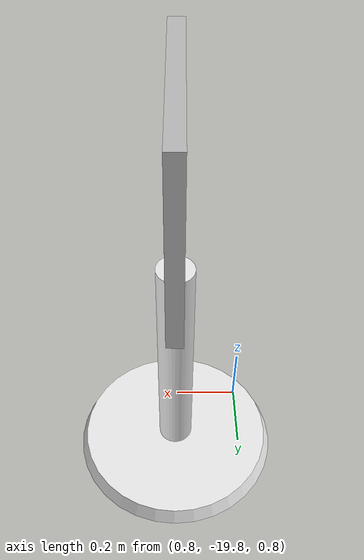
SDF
<sdf version="1.7">
 <world name="default">
  <model name="sign_board_trafik_isik">
   <link name="link_0">
    <inertial>
     <mass>1</mass>
     <inertia>
      <ixx>0.166667</ixx>
      <ixy>0</ixy>
      <ixz>0</ixz>
      <iyy>0.166667</iyy>
      <iyz>0</iyz>
      <izz>0.166667</izz>
     </inertia>
    </inertial>
    <visual name="visual">
     <geometry>
      <mesh>
       <uri>/home/davut/otonomus_ws/src/self_driving_car_pkg/models/sign_board_trafik_isik/meshes/sign_stand.obj</uri>
       <scale>0.25 0.25 0.25</scale>
      </mesh>
     </geometry>
     <material>
      <lighting>1</lighting>
      <script><uri>file://media/materials/scripts/gazebo.material</uri><name>Gazebo/White</name></script>
      <shader type="pixel"/>
      <emissive>0 0 0 1</emissive>
     </material>
    </visual>
    <collision name="collision">
     <geometry>
      <mesh>
       <uri>/home/davut/otonomus_ws/src/self_driving_car_pkg/models/sign_board_trafik_isik/meshes/sign_stand.obj</uri>
       <scale>0.25 0.25 0.25</scale>
      </mesh>
     </geometry>
     <surface>
      <friction>
       <ode><mu>1</mu><mu2>1</mu2><fdir1>0 0 0</fdir1><slip1>0</slip1><slip2>0</slip2></ode>
       <torsional>
        <coefficient>1</coefficient>
        <patch_radius>0</patch_radius>
        <surface_radius>0</surface_radius>
        <use_patch_radius>1</use_patch_radius>
        <ode><slip>0</slip></ode>
       </torsional>
      </friction>
      <bounce><restitution_coefficient>0</restitution_coefficient><threshold>1e+06</threshold></bounce>
      <contact>
       <collide_without_contact>0</collide_without_contact>
       <collide_without_contact_bitmask>1</collide_without_contact_bitmask>
       <collide_bitmask>1</collide_bitmask>
       <ode>
        <soft_cfm>0</soft_cfm>
        <soft_erp>0.2</soft_erp>
        <kp>1e+13</kp>
        <kd>1</kd>
        <max_vel>0.01</max_vel>
        <min_depth>0</min_depth>
       </ode>
       <bullet>
        <split_impulse>1</split_impulse>
        <split_impulse_penetration_threshold>-0.01</split_impulse_penetration_threshold>
        <soft_cfm>0</soft_cfm>
        <soft_erp>0.2</soft_erp>
        <kp>1e+13</kp>
        <kd>1</kd>
       </bullet>
      </contact>
     </surface>
    </collision>
   </link>
   <link name="link_1">
    <inertial>
     <mass>1</mass>
     <inertia>
      <ixx>0.166667</ixx>
      <ixy>0</ixy>
      <ixz>0</ixz>
      <iyy>0.166667</iyy>
      <iyz>0</iyz>
      <izz>0.166667</izz>
     </inertia>
    </inertial>
    <visual name="visual">
     <geometry>
      <mesh>
       <uri>/home/davut/otonomus_ws/src/self_driving_car_pkg/models/sign_board_trafik_isik/meshes/sign_board.obj</uri>
       <scale>0.25 0.25 0.25</scale>
      </mesh>
     </geometry>
     <material>
      <script>
       <uri>/home/davut/otonomus_ws/src/self_driving_car_pkg/models/sign_board_trafik_isik/materials/scripts</uri>
       <uri>/home/davut/otonomus_ws/src/self_driving_car_pkg/models/sign_board_trafik_isik/materials/textures</uri>
       <name>sign_board_trafik_isik/Diffuse</name>
      </script>
     </material>
    </visual>
    <collision name="collision">
     <geometry>
      <mesh>
       <uri>/home/davut/otonomus_ws/src/self_driving_car_pkg/models/sign_board_trafik_isik/meshes/sign_board.obj</uri>
       <scale>0.25 0.25 0.25</scale>
      </mesh>
     </geometry>
     <surface>
      <friction>
       <ode><mu>1</mu><mu2>1</mu2><fdir1>0 0 0</fdir1><slip1>0</slip1><slip2>0</slip2></ode>
       <torsional>
        <coefficient>1</coefficient>
        <patch_radius>0</patch_radius>
        <surface_radius>0</surface_radius>
        <use_patch_radius>1</use_patch_radius>
        <ode><slip>0</slip></ode>
       </torsional>
      </friction>
      <bounce><restitution_coefficient>0</restitution_coefficient><threshold>1e+06</threshold></bounce>
      <contact>
       <collide_without_contact>0</collide_without_contact>
       <collide_without_contact_bitmask>1</collide_without_contact_bitmask>
       <collide_bitmask>1</collide_bitmask>
       <ode>
        <soft_cfm>0</soft_cfm>
        <soft_erp>0.2</soft_erp>
        <kp>1e+13</kp>
        <kd>1</kd>
        <max_vel>0.01</max_vel>
        <min_depth>0</min_depth>
       </ode>
       <bullet>
        <split_impulse>1</split_impulse>
        <split_impulse_penetration_threshold>-0.01</split_impulse_penetration_threshold>
        <soft_cfm>0</soft_cfm>
        <soft_erp>0.2</soft_erp>
        <kp>1e+13</kp>
        <kd>1</kd>
       </bullet>
      </contact>
     </surface>
    </collision>
   </link>
   <joint name="link_0_JOINT_0" type="fixed">
    <parent>link_0</parent>
    <child>link_1</child>
    <physics>
     <ode><limit><cfm>0</cfm><erp>0.2</erp></limit><suspension><cfm>0</cfm><erp>0.2</erp></suspension></ode>
    </physics>
   </joint>
   <static>1</static>
   <pose>1.01147 -19.5633 0.920024 1.58351 0.000299 3.11809</pose>
  </model>
 </world>
</sdf>
